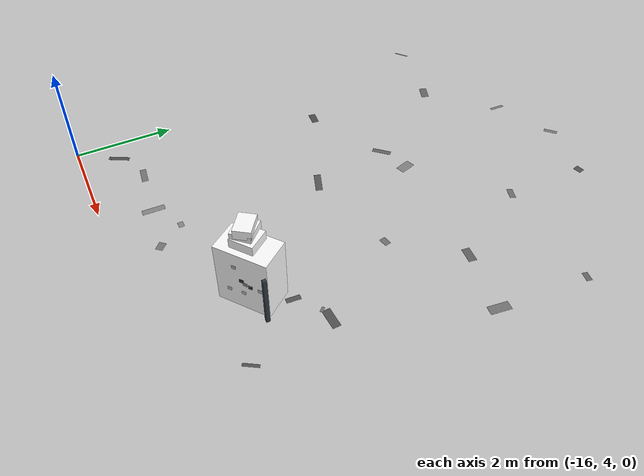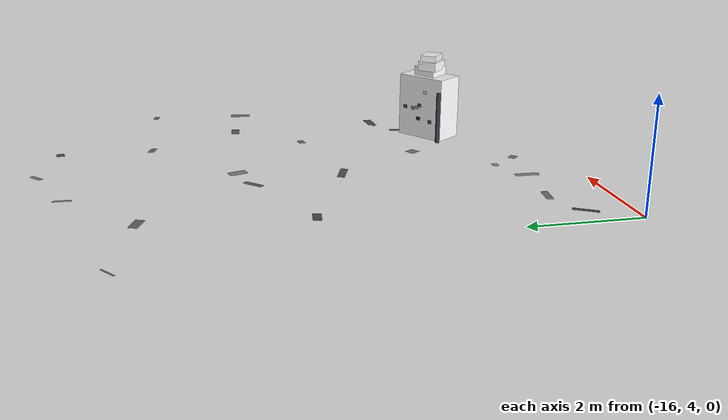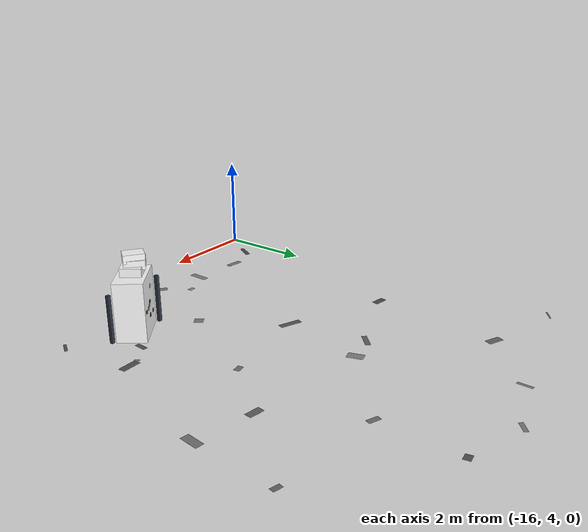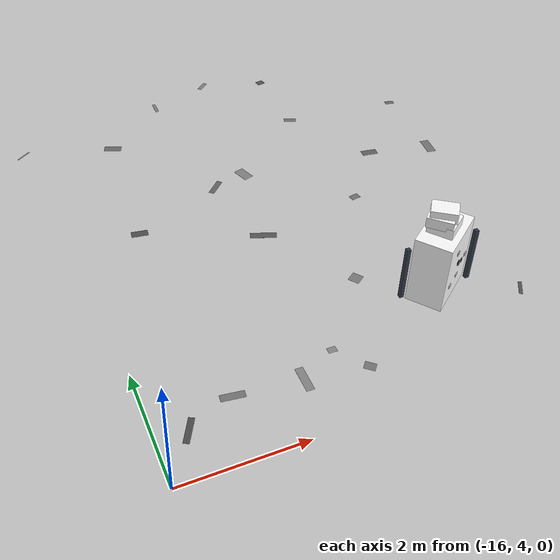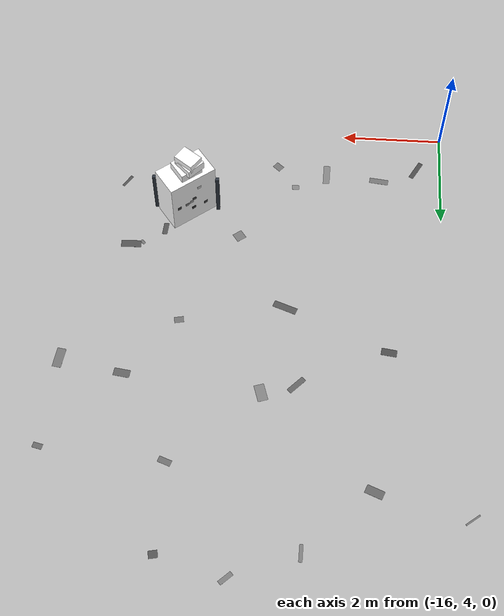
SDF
<sdf version="1.9">
 <world name="warehouse_irregular">
  <model name="concrete_patch_40">
   <static>true</static>
   <pose>-13.238568509065864 9.83755259906751 0.0006 0 0 -2.3424114872919275</pose>
   <link name="body">
    <visual name="surface">
     <geometry><box><size>0.38896473313438434 0.10838831607054795 0.001</size></box></geometry>
     <material>
      <ambient>0.38602600717064456 0.38602600717064456 0.38602600717064456 1</ambient>
      <diffuse>0.38602600717064456 0.38602600717064456 0.38602600717064456 1</diffuse>
     </material>
    </visual>
   </link>
  </model>
  <model name="concrete_patch_42">
   <static>true</static>
   <pose>-14.741551140335696 5.090986394202229 0.0006 0 0 -0.12249271842328735</pose>
   <link name="body">
    <visual name="surface">
     <geometry><box><size>0.3796452278462518 0.12390636045359701 0.001</size></box></geometry>
     <material>
      <ambient>0.4574309733602687 0.4574309733602687 0.4574309733602687 1</ambient>
      <diffuse>0.4574309733602687 0.4574309733602687 0.4574309733602687 1</diffuse>
     </material>
    </visual>
   </link>
  </model>
  <model name="concrete_patch_43">
   <static>true</static>
   <pose>-13.039353673341463 5.343183769472859 0.0006 0 0 -1.563677039174225</pose>
   <link name="body">
    <visual name="surface">
     <geometry><box><size>0.10618705003521588 0.14582692671168462 0.001</size></box></geometry>
     <material>
      <ambient>0.5284033165310783 0.5284033165310783 0.5284033165310783 1</ambient>
      <diffuse>0.5284033165310783 0.5284033165310783 0.5284033165310783 1</diffuse>
     </material>
    </visual>
   </link>
  </model>
  <model name="concrete_patch_61">
   <static>true</static>
   <pose>-10.931057617990074 8.58346079944926 0.0006 0 0 -1.385193412058391</pose>
   <link name="body">
    <visual name="surface">
     <geometry><box><size>0.1262187288862002 0.18094161602729975 0.001</size></box></geometry>
     <material>
      <ambient>0.4438550715636477 0.4438550715636477 0.4438550715636477 1</ambient>
      <diffuse>0.4438550715636477 0.4438550715636477 0.4438550715636477 1</diffuse>
     </material>
    </visual>
   </link>
  </model>
  <model name="concrete_patch_84">
   <static>true</static>
   <pose>-15.508019333649054 4.769549789995445 0.0006 0 0 -2.0806550524027276</pose>
   <link name="body">
    <visual name="surface">
     <geometry><box><size>0.4323842155122364 0.09687938221301295 0.001</size></box></geometry>
     <material>
      <ambient>0.29046193395339986 0.29046193395339986 0.29046193395339986 1</ambient>
      <diffuse>0.29046193395339986 0.29046193395339986 0.29046193395339986 1</diffuse>
     </material>
    </visual>
   </link>
  </model>
  <model name="concrete_patch_92">
   <static>true</static>
   <pose>-10.942076244205902 11.486514543646486 0.0006 0 0 2.7847418788494265</pose>
   <link name="body">
    <visual name="surface">
     <geometry><box><size>0.2500229064694387 0.11781228360735825 0.001</size></box></geometry>
     <material>
      <ambient>0.4343546856364231 0.4343546856364231 0.4343546856364231 1</ambient>
      <diffuse>0.4343546856364231 0.4343546856364231 0.4343546856364231 1</diffuse>
     </material>
    </visual>
   </link>
  </model>
  <model name="concrete_patch_98">
   <static>true</static>
   <pose>-9.580631884110662 5.391586903900404 0.0006 0 0 -2.1377434685305943</pose>
   <link name="body">
    <visual name="surface">
     <geometry><box><size>0.2919267288459281 0.06076187877102926 0.001</size></box></geometry>
     <material>
      <ambient>0.318618521395894 0.318618521395894 0.318618521395894 1</ambient>
      <diffuse>0.318618521395894 0.318618521395894 0.318618521395894 1</diffuse>
     </material>
    </visual>
   </link>
  </model>
  <model name="concrete_patch_103">
   <static>true</static>
   <pose>-10.471953603676223 6.515763398069879 0.0006 0 0 -1.6547924956703826</pose>
   <link name="body">
    <visual name="surface">
     <geometry><box><size>0.2637455830824234 0.10047038453729 0.001</size></box></geometry>
     <material>
      <ambient>0.3279704574854456 0.3279704574854456 0.3279704574854456 1</ambient>
      <diffuse>0.3279704574854456 0.3279704574854456 0.3279704574854456 1</diffuse>
     </material>
    </visual>
   </link>
  </model>
  <model name="concrete_patch_120">
   <static>true</static>
   <pose>-8.75158842871897 9.533829686315894 0.0006 0 0 1.4312185711521117</pose>
   <link name="body">
    <visual name="surface">
     <geometry><box><size>0.3973864408084798 0.17135142365693568 0.001</size></box></geometry>
     <material>
      <ambient>0.45834206476336703 0.45834206476336703 0.45834206476336703 1</ambient>
      <diffuse>0.45834206476336703 0.45834206476336703 0.45834206476336703 1</diffuse>
     </material>
    </visual>
   </link>
  </model>
  <model name="concrete_patch_139">
   <static>true</static>
   <pose>-12.661342439268655 4.845808653108602 0.0006 0 0 -0.7118126931411526</pose>
   <link name="body">
    <visual name="surface">
     <geometry><box><size>0.1811058750650111 0.14427008621838502 0.001</size></box></geometry>
     <material>
      <ambient>0.4608887804204296 0.4608887804204296 0.4608887804204296 1</ambient>
      <diffuse>0.4608887804204296 0.4608887804204296 0.4608887804204296 1</diffuse>
     </material>
    </visual>
   </link>
  </model>
  <model name="concrete_patch_149">
   <static>true</static>
   <pose>-12.18424691437681 13.538715511168437 0.0006 0 0 -2.4023389006179574</pose>
   <link name="body">
    <visual name="surface">
     <geometry><box><size>0.2797817314435414 0.08874303191018804 0.001</size></box></geometry>
     <material>
      <ambient>0.4893043120409292 0.4893043120409292 0.4893043120409292 1</ambient>
      <diffuse>0.4893043120409292 0.4893043120409292 0.4893043120409292 1</diffuse>
     </material>
    </visual>
   </link>
  </model>
  <model name="concrete_patch_150">
   <static>true</static>
   <pose>-14.709591890089845 11.844402563493823 0.0006 0 0 2.7577998098866807</pose>
   <link name="body">
    <visual name="surface">
     <geometry><box><size>0.33939828300152125 0.16526854679118963 0.001</size></box></geometry>
     <material>
      <ambient>0.40024636113869627 0.40024636113869627 0.40024636113869627 1</ambient>
      <diffuse>0.40024636113869627 0.40024636113869627 0.40024636113869627 1</diffuse>
     </material>
    </visual>
   </link>
  </model>
  <model name="concrete_patch_168">
   <static>true</static>
   <pose>-12.58793543877918 10.032376860942641 0.0006 0 0 -1.2655922128379626</pose>
   <link name="body">
    <visual name="surface">
     <geometry><box><size>0.3375668102783382 0.19395632365731383 0.001</size></box></geometry>
     <material>
      <ambient>0.5133455082008054 0.5133455082008054 0.5133455082008054 1</ambient>
      <diffuse>0.5133455082008054 0.5133455082008054 0.5133455082008054 1</diffuse>
     </material>
    </visual>
   </link>
  </model>
  <model name="concrete_patch_173">
   <static>true</static>
   <pose>-16.428974911016752 12.25619289106324 0.0006 0 0 0.6505534075535842</pose>
   <link name="body">
    <visual name="surface">
     <geometry><box><size>0.32083967422747245 0.03196278350189055 0.001</size></box></geometry>
     <material>
      <ambient>0.45672143285525907 0.45672143285525907 0.45672143285525907 1</ambient>
      <diffuse>0.45672143285525907 0.45672143285525907 0.45672143285525907 1</diffuse>
     </material>
    </visual>
   </link>
  </model>
  <model name="concrete_patch_174">
   <static>true</static>
   <pose>-10.051276519438352 6.860197401164029 0.0006 0 0 2.3169037831994874</pose>
   <link name="body">
    <visual name="surface">
     <geometry><box><size>0.10971999482322078 0.054149999127533405 0.001</size></box></geometry>
     <material>
      <ambient>0.463834455971378 0.463834455971378 0.463834455971378 1</ambient>
      <diffuse>0.463834455971378 0.463834455971378 0.463834455971378 1</diffuse>
     </material>
    </visual>
   </link>
  </model>
  <model name="concrete_patch_175">
   <static>true</static>
   <pose>-9.965969325999227 9.778440034924405 0.0006 0 0 -0.14242508111939678</pose>
   <link name="body">
    <visual name="surface">
     <geometry><box><size>0.3112232261956023 0.1569835922414771 0.001</size></box></geometry>
     <material>
      <ambient>0.3814172784484961 0.3814172784484961 0.3814172784484961 1</ambient>
      <diffuse>0.3814172784484961 0.3814172784484961 0.3814172784484961 1</diffuse>
     </material>
    </visual>
   </link>
  </model>
  <model name="concrete_patch_179">
   <static>true</static>
   <pose>-13.448772672955279 13.02682881413272 0.0006 0 0 -1.5936830911660886</pose>
   <link name="body">
    <visual name="surface">
     <geometry><box><size>0.3198582451608591 0.06801277356308649 0.001</size></box></geometry>
     <material>
      <ambient>0.49199534847916493 0.49199534847916493 0.49199534847916493 1</ambient>
      <diffuse>0.49199534847916493 0.49199534847916493 0.49199534847916493 1</diffuse>
     </material>
    </visual>
   </link>
  </model>
  <model name="concrete_patch_183">
   <static>true</static>
   <pose>-11.962803482370436 6.604081099310125 0.0006 0 0 2.196974388862646</pose>
   <link name="body">
    <visual name="surface">
     <geometry><box><size>0.1940780486556473 0.19768638360648788 0.001</size></box></geometry>
     <material>
      <ambient>0.47979665025596946 0.47979665025596946 0.47979665025596946 1</ambient>
      <diffuse>0.47979665025596946 0.47979665025596946 0.47979665025596946 1</diffuse>
     </material>
    </visual>
   </link>
  </model>
  <model name="concrete_patch_186">
   <static>true</static>
   <pose>-9.821004807550965 6.9128254803179665 0.0006 0 0 0.03344844636777822</pose>
   <link name="body">
    <visual name="surface">
     <geometry><box><size>0.3989070870282673 0.15469203598552334 0.001</size></box></geometry>
     <material>
      <ambient>0.319696886617443 0.319696886617443 0.319696886617443 1</ambient>
      <diffuse>0.319696886617443 0.319696886617443 0.319696886617443 1</diffuse>
     </material>
    </visual>
   </link>
  </model>
  <model name="concrete_patch_188">
   <static>true</static>
   <pose>-10.908356025260861 13.200426865730858 0.0006 0 0 -2.944657550331544</pose>
   <link name="body">
    <visual name="surface">
     <geometry><box><size>0.16617578148131634 0.14119229502727493 0.001</size></box></geometry>
     <material>
      <ambient>0.3245482616636907 0.3245482616636907 0.3245482616636907 1</ambient>
      <diffuse>0.3245482616636907 0.3245482616636907 0.3245482616636907 1</diffuse>
     </material>
    </visual>
   </link>
  </model>
  <model name="concrete_patch_191">
   <static>true</static>
   <pose>-13.662416372683323 4.988622320441859 0.0006 0 0 -1.5924716809728559</pose>
   <link name="body">
    <visual name="surface">
     <geometry><box><size>0.4429236660188016 0.13138518629504808 0.001</size></box></geometry>
     <material>
      <ambient>0.5226651107541114 0.5226651107541114 0.5226651107541114 1</ambient>
      <diffuse>0.5226651107541114 0.5226651107541114 0.5226651107541114 1</diffuse>
     </material>
    </visual>
   </link>
  </model>
  <model name="concrete_patch_195">
   <static>true</static>
   <pose>-8.618154411411632 11.329489237372407 0.0006 0 0 -1.7983329514560888</pose>
   <link name="body">
    <visual name="surface">
     <geometry><box><size>0.10822078508465036 0.18569971823638035 0.001</size></box></geometry>
     <material>
      <ambient>0.4058677015128323 0.4058677015128323 0.4058677015128323 1</ambient>
      <diffuse>0.4058677015128323 0.4058677015128323 0.4058677015128323 1</diffuse>
     </material>
    </visual>
   </link>
  </model>
  <model name="concrete_patch_197">
   <static>true</static>
   <pose>-14.959219435093424 9.052649763403892 0.0006 0 0 -0.1383056270509213</pose>
   <link name="body">
    <visual name="surface">
     <geometry><box><size>0.2970793855108293 0.1469386723975766 0.001</size></box></geometry>
     <material>
      <ambient>0.29864825123951266 0.29864825123951266 0.29864825123951266 1</ambient>
      <diffuse>0.29864825123951266 0.29864825123951266 0.29864825123951266 1</diffuse>
     </material>
    </visual>
   </link>
  </model>
  <model name="concrete_patch_205">
   <static>true</static>
   <pose>-12.952254016320207 8.192681657575573 0.0006 0 0 2.7867837380810716</pose>
   <link name="body">
    <visual name="surface">
     <geometry><box><size>0.4701217342100852 0.13778237307512642 0.001</size></box></geometry>
     <material>
      <ambient>0.33898098846381675 0.33898098846381675 0.33898098846381675 1</ambient>
      <diffuse>0.33898098846381675 0.33898098846381675 0.33898098846381675 1</diffuse>
     </material>
    </visual>
   </link>
  </model>
  <model name="cabinet_16">
   <static>true</static>
   <pose>-10.873437353583162 5.957177459288251 0.616289558555594 0 0 0.6478021495445201</pose>
   <link name="body">
    <visual name="surface">
     <geometry><box><size>1 0.6 1.232579117111188</size></box></geometry>
     <material>
      <ambient>1 1 1 1</ambient>
      <diffuse>1 1 1 1</diffuse>
      <pbr>
       <metal>
        <albedo_map>model://feature_warehouse_materials/textures/storage_16.png</albedo_map>
        <roughness>.9</roughness>
        <metalness>0</metalness>
       </metal>
      </pbr>
     </material>
    </visual>
    <collision name="solid"><geometry><box><size>1 0.6 1.232579117111188</size></box></geometry></collision>
   </link>
  </model>
  <model name="panel_16_0_-1">
   <static>true</static>
   <pose>-10.667492527938226 5.730537238554652 0.38126530715030527 0 0 0.6478021495445201</pose>
   <link name="body">
    <visual name="surface">
     <geometry><box><size>0.08 0.012 0.065</size></box></geometry>
     <material>
      <ambient>0.7897877412832494 0.7897877412832494 0.7897877412832494 1</ambient>
      <diffuse>0.7897877412832494 0.7897877412832494 0.7897877412832494 1</diffuse>
     </material>
    </visual>
   </link>
  </model>
  <model name="panel_16_0_1">
   <static>true</static>
   <pose>-11.035588044050655 6.216958548755926 0.38126530715030527 0 0 0.6478021495445201</pose>
   <link name="body">
    <visual name="surface">
     <geometry><box><size>0.08 0.012 0.065</size></box></geometry>
     <material>
      <ambient>0.2045917071352114 0.2045917071352114 0.2045917071352114 1</ambient>
      <diffuse>0.2045917071352114 0.2045917071352114 0.2045917071352114 1</diffuse>
     </material>
    </visual>
   </link>
  </model>
  <model name="panel_16_1_-1">
   <static>true</static>
   <pose>-10.410415321560693 5.925078400665997 0.5813127542250401 0 0 0.6478021495445201</pose>
   <link name="body">
    <visual name="surface">
     <geometry><box><size>0.08 0.012 0.065</size></box></geometry>
     <material>
      <ambient>0.7348364741954051 0.7348364741954051 0.7348364741954051 1</ambient>
      <diffuse>0.7348364741954051 0.7348364741954051 0.7348364741954051 1</diffuse>
     </material>
    </visual>
   </link>
  </model>
  <model name="panel_16_1_1">
   <static>true</static>
   <pose>-10.778510837673123 6.411499710867272 0.5813127542250401 0 0 0.6478021495445201</pose>
   <link name="body">
    <visual name="surface">
     <geometry><box><size>0.08 0.012 0.065</size></box></geometry>
     <material>
      <ambient>0.25911772425361435 0.25911772425361435 0.25911772425361435 1</ambient>
      <diffuse>0.25911772425361435 0.25911772425361435 0.25911772425361435 1</diffuse>
     </material>
    </visual>
   </link>
  </model>
  <model name="panel_16_2_-1">
   <static>true</static>
   <pose>-10.555988741897593 5.814916855175752 0.5793005475114884 0 0 0.6478021495445201</pose>
   <link name="body">
    <visual name="surface">
     <geometry><box><size>0.08 0.012 0.065</size></box></geometry>
     <material>
      <ambient>0.16333376532966262 0.16333376532966262 0.16333376532966262 1</ambient>
      <diffuse>0.16333376532966262 0.16333376532966262 0.16333376532966262 1</diffuse>
     </material>
    </visual>
   </link>
  </model>
  <model name="panel_16_2_1">
   <static>true</static>
   <pose>-10.924084258010023 6.301338165377026 0.5793005475114884 0 0 0.6478021495445201</pose>
   <link name="body">
    <visual name="surface">
     <geometry><box><size>0.08 0.012 0.065</size></box></geometry>
     <material>
      <ambient>0.5058683599705557 0.5058683599705557 0.5058683599705557 1</ambient>
      <diffuse>0.5058683599705557 0.5058683599705557 0.5058683599705557 1</diffuse>
     </material>
    </visual>
   </link>
  </model>
  <model name="panel_16_3_-1">
   <static>true</static>
   <pose>-10.88940724062063 5.562605018101625 0.3567646910473461 0 0 0.6478021495445201</pose>
   <link name="body">
    <visual name="surface">
     <geometry><box><size>0.08 0.012 0.065</size></box></geometry>
     <material>
      <ambient>0.7880149480133581 0.7880149480133581 0.7880149480133581 1</ambient>
      <diffuse>0.7880149480133581 0.7880149480133581 0.7880149480133581 1</diffuse>
     </material>
    </visual>
   </link>
  </model>
  <model name="panel_16_3_1">
   <static>true</static>
   <pose>-11.257502756733059 6.049026328302899 0.3567646910473461 0 0 0.6478021495445201</pose>
   <link name="body">
    <visual name="surface">
     <geometry><box><size>0.08 0.012 0.065</size></box></geometry>
     <material>
      <ambient>0.2831180791882174 0.2831180791882174 0.2831180791882174 1</ambient>
      <diffuse>0.2831180791882174 0.2831180791882174 0.2831180791882174 1</diffuse>
     </material>
    </visual>
   </link>
  </model>
  <model name="panel_16_4_-1">
   <static>true</static>
   <pose>-10.784880016255382 5.641705176325788 0.9369072454652027 0 0 0.6478021495445201</pose>
   <link name="body">
    <visual name="surface">
     <geometry><box><size>0.08 0.012 0.065</size></box></geometry>
     <material>
      <ambient>0.7084349328964014 0.7084349328964014 0.7084349328964014 1</ambient>
      <diffuse>0.7084349328964014 0.7084349328964014 0.7084349328964014 1</diffuse>
     </material>
    </visual>
   </link>
  </model>
  <model name="panel_16_4_1">
   <static>true</static>
   <pose>-11.152975532367812 6.128126486527062 0.9369072454652027 0 0 0.6478021495445201</pose>
   <link name="body">
    <visual name="surface">
     <geometry><box><size>0.08 0.012 0.065</size></box></geometry>
     <material>
      <ambient>0.7963520600082811 0.7963520600082811 0.7963520600082811 1</ambient>
      <diffuse>0.7963520600082811 0.7963520600082811 0.7963520600082811 1</diffuse>
     </material>
    </visual>
   </link>
  </model>
  <model name="panel_16_5_-1">
   <static>true</static>
   <pose>-10.633423422182839 5.756318767454628 0.6064175145375982 0 0 0.6478021495445201</pose>
   <link name="body">
    <visual name="surface">
     <geometry><box><size>0.08 0.012 0.065</size></box></geometry>
     <material>
      <ambient>0.5696136218023332 0.5696136218023332 0.5696136218023332 1</ambient>
      <diffuse>0.5696136218023332 0.5696136218023332 0.5696136218023332 1</diffuse>
     </material>
    </visual>
   </link>
  </model>
  <model name="panel_16_5_1">
   <static>true</static>
   <pose>-11.001518938295268 6.2427400776559026 0.6064175145375982 0 0 0.6478021495445201</pose>
   <link name="body">
    <visual name="surface">
     <geometry><box><size>0.08 0.012 0.065</size></box></geometry>
     <material>
      <ambient>0.6194241960661597 0.6194241960661597 0.6194241960661597 1</ambient>
      <diffuse>0.6194241960661597 0.6194241960661597 0.6194241960661597 1</diffuse>
     </material>
    </visual>
   </link>
  </model>
  <model name="panel_16_6_-1">
   <static>true</static>
   <pose>-10.68681352713068 5.715916223766852 0.6566497047400875 0 0 0.6478021495445201</pose>
   <link name="body">
    <visual name="surface">
     <geometry><box><size>0.08 0.012 0.065</size></box></geometry>
     <material>
      <ambient>0.2093776326517209 0.2093776326517209 0.2093776326517209 1</ambient>
      <diffuse>0.2093776326517209 0.2093776326517209 0.2093776326517209 1</diffuse>
     </material>
    </visual>
   </link>
  </model>
  <model name="panel_16_6_1">
   <static>true</static>
   <pose>-11.054909043243109 6.202337533968127 0.6566497047400875 0 0 0.6478021495445201</pose>
   <link name="body">
    <visual name="surface">
     <geometry><box><size>0.08 0.012 0.065</size></box></geometry>
     <material>
      <ambient>0.2965929819305607 0.2965929819305607 0.2965929819305607 1</ambient>
      <diffuse>0.2965929819305607 0.2965929819305607 0.2965929819305607 1</diffuse>
     </material>
    </visual>
   </link>
  </model>
  <model name="carton_16_0">
   <static>true</static>
   <pose>-10.902227685249668 5.957177459288251 1.332579117111188 0 0 0.6478021495445201</pose>
   <link name="body">
    <visual name="surface">
     <geometry><box><size>0.45 0.42 0.18</size></box></geometry>
     <material>
      <ambient>1 1 1 1</ambient>
      <diffuse>1 1 1 1</diffuse>
      <pbr>
       <metal>
        <albedo_map>model://feature_warehouse_materials/textures/storage_16.png</albedo_map>
        <roughness>.9</roughness>
        <metalness>0</metalness>
       </metal>
      </pbr>
     </material>
    </visual>
    <collision name="solid"><geometry><box><size>0.45 0.42 0.18</size></box></geometry></collision>
   </link>
  </model>
  <model name="carton_16_1">
   <static>true</static>
   <pose>-10.969577102771117 5.957177459288251 1.452579117111188 0 0 0.7978021495445201</pose>
   <link name="body">
    <visual name="surface">
     <geometry><box><size>0.38 0.42 0.18</size></box></geometry>
     <material>
      <ambient>1 1 1 1</ambient>
      <diffuse>1 1 1 1</diffuse>
      <pbr>
       <metal>
        <albedo_map>model://feature_warehouse_materials/textures/storage_16.png</albedo_map>
        <roughness>.9</roughness>
        <metalness>0</metalness>
       </metal>
      </pbr>
     </material>
    </visual>
    <collision name="solid"><geometry><box><size>0.38 0.42 0.18</size></box></geometry></collision>
   </link>
  </model>
  <model name="carton_16_2">
   <static>true</static>
   <pose>-10.948536078260329 5.957177459288251 1.572579117111188 0 0 0.9478021495445201</pose>
   <link name="body">
    <visual name="surface">
     <geometry><box><size>0.31 0.42 0.18</size></box></geometry>
     <material>
      <ambient>1 1 1 1</ambient>
      <diffuse>1 1 1 1</diffuse>
      <pbr>
       <metal>
        <albedo_map>model://feature_warehouse_materials/textures/storage_16.png</albedo_map>
        <roughness>.9</roughness>
        <metalness>0</metalness>
       </metal>
      </pbr>
     </material>
    </visual>
    <collision name="solid"><geometry><box><size>0.31 0.42 0.18</size></box></geometry></collision>
   </link>
  </model>
  <model name="post_16_-1">
   <static>true</static>
   <pose>-11.493437353583161 5.957177459288251 0.5 0 0 0</pose>
   <link name="body">
    <visual name="surface">
     <geometry><box><size>0.07 0.07 1</size></box></geometry>
     <material><ambient>0.18 0.21 0.25 1</ambient><diffuse>0.18 0.21 0.25 1</diffuse></material>
    </visual>
    <collision name="solid"><geometry><box><size>0.07 0.07 1</size></box></geometry></collision>
   </link>
  </model>
  <model name="post_16_1">
   <static>true</static>
   <pose>-10.253437353583163 5.957177459288251 0.5 0 0 0</pose>
   <link name="body">
    <visual name="surface">
     <geometry><box><size>0.07 0.07 1</size></box></geometry>
     <material><ambient>0.18 0.21 0.25 1</ambient><diffuse>0.18 0.21 0.25 1</diffuse></material>
    </visual>
    <collision name="solid"><geometry><box><size>0.07 0.07 1</size></box></geometry></collision>
   </link>
  </model>
 </world>
</sdf>
